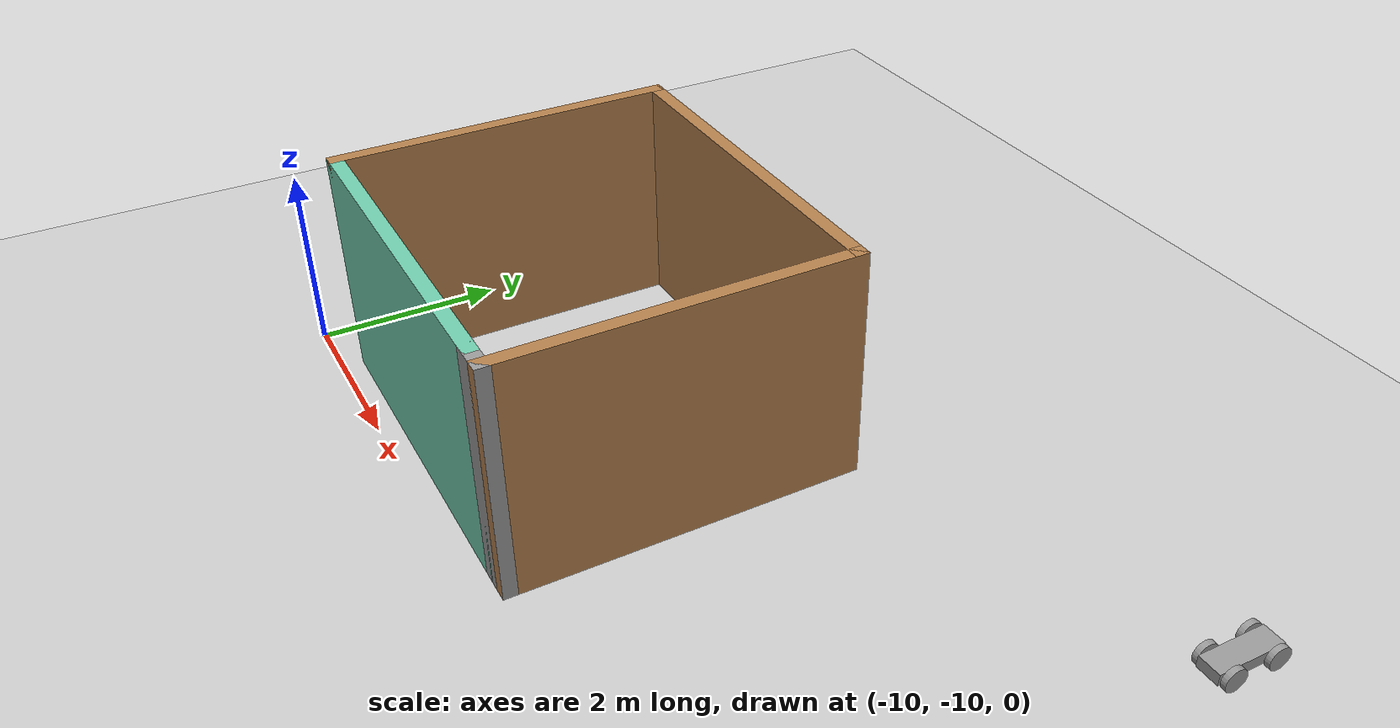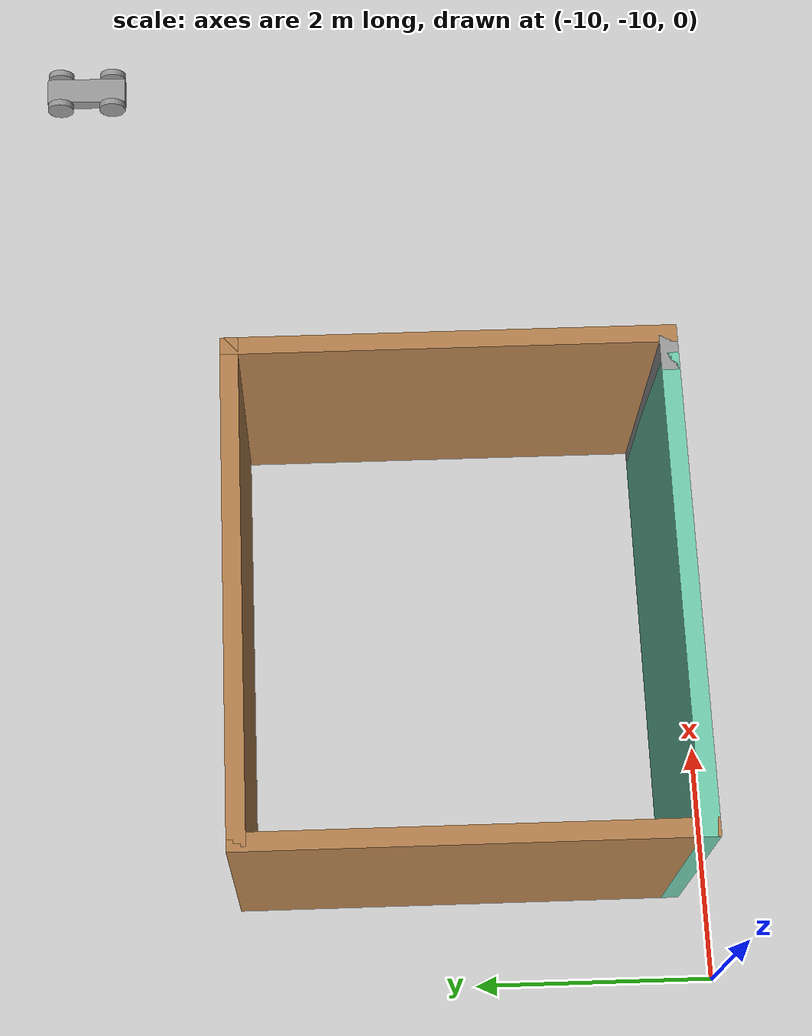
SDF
<sdf version="1.6">
 <world name="default">
  <model name="ground_plane">
   <static>1</static>
   <link name="link">
    <collision name="collision">
     <geometry><plane><normal>0 0 1</normal><size>100 100</size></plane></geometry>
     <surface>
      <contact><collide_bitmask>65535</collide_bitmask></contact>
      <friction><ode><mu>100</mu><mu2>50</mu2></ode></friction>
     </surface>
    </collision>
    <visual name="visual">
     <cast_shadows>0</cast_shadows>
     <geometry><plane><normal>0 0 1</normal><size>100 100</size></plane></geometry>
     <material>
      <script><uri>file://media/materials/scripts/gazebo.material</uri><name>Gazebo/Grey</name></script>
     </material>
    </visual>
   </link>
  </model>
  <model name="WoodBlue">
   <pose>-7.16867 -7.90028 0 0 -0 0</pose>
   <link name="Wall_0">
    <collision name="Wall_0_Collision">
     <geometry><box><size>4 0.15 2.5</size></box></geometry>
     <pose>0 0 1.25 0 -0 0</pose>
    </collision>
    <visual name="Wall_0_Visual">
     <pose>0 0 1.25 0 -0 0</pose>
     <geometry><box><size>4 0.15 2.5</size></box></geometry>
     <material>
      <script><uri>file://media/materials/scripts/gazebo.material</uri><name>Gazebo/Grey</name></script>
      <ambient>0.435294 0.796078 0.67451 1</ambient>
     </material>
     <meta><layer>0</layer></meta>
    </visual>
    <pose>-0.125 -1.8 0 0 -0 0</pose>
   </link>
   <link name="Wall_3">
    <collision name="Wall_3_Collision">
     <geometry><box><size>3.75 0.15 2.5</size></box></geometry>
     <pose>0 0 1.25 0 -0 0</pose>
    </collision>
    <visual name="Wall_3_Visual">
     <pose>0 0 1.25 0 -0 0</pose>
     <geometry><box><size>3.75 0.15 2.5</size></box></geometry>
     <material>
      <script><uri>file://media/materials/scripts/gazebo.material</uri><name>Gazebo/Wood</name></script>
      <ambient>1 1 1 1</ambient>
     </material>
     <meta><layer>0</layer></meta>
    </visual>
    <pose>-2.05 0 0 0 -0 1.5708</pose>
   </link>
   <link name="Wall_4">
    <collision name="Wall_4_Collision">
     <geometry><box><size>4.25 0.15 2.5</size></box></geometry>
     <pose>0 0 1.25 0 -0 0</pose>
    </collision>
    <visual name="Wall_4_Visual">
     <pose>0 0 1.25 0 -0 0</pose>
     <geometry><box><size>4.25 0.15 2.5</size></box></geometry>
     <material>
      <script><uri>file://media/materials/scripts/gazebo.material</uri><name>Gazebo/Wood</name></script>
      <ambient>1 1 1 1</ambient>
     </material>
     <meta><layer>0</layer></meta>
    </visual>
    <pose>0 1.8 0 0 -0 0</pose>
   </link>
   <link name="Wall_5">
    <collision name="Wall_5_Collision">
     <geometry><box><size>3.75 0.15 2.5</size></box></geometry>
     <pose>0 0 1.25 0 -0 0</pose>
    </collision>
    <visual name="Wall_5_Visual">
     <pose>0 0 1.25 0 -0 0</pose>
     <geometry><box><size>3.75 0.15 2.5</size></box></geometry>
     <material>
      <script><uri>file://media/materials/scripts/gazebo.material</uri><name>Gazebo/Wood</name></script>
      <ambient>1 1 1 1</ambient>
     </material>
     <meta><layer>0</layer></meta>
    </visual>
    <pose>2.05 0 0 0 0 -1.5708</pose>
   </link>
   <link name="Wall_6">
    <collision name="Wall_6_Collision">
     <geometry><box><size>0.4 0.15 2.5</size></box></geometry>
     <pose>0 0 1.25 0 -0 0</pose>
    </collision>
    <visual name="Wall_6_Visual">
     <pose>0 0 1.25 0 -0 0</pose>
     <geometry><box><size>0.4 0.15 2.5</size></box></geometry>
     <material>
      <script><uri>file://media/materials/scripts/gazebo.material</uri><name>Gazebo/Grey</name></script>
      <ambient>1 1 1 1</ambient>
     </material>
     <meta><layer>0</layer></meta>
    </visual>
    <pose>1.925 -1.8 0 0 0 -3.14159</pose>
   </link>
   <static>1</static>
  </model>
  <model name="Car">
   <link name="link_0">
    <pose>-0.006 0 0 0 -0 0</pose>
    <inertial>
     <mass>1</mass>
     <inertia>
      <ixx>0.166667</ixx>
      <ixy>0</ixy>
      <ixz>0</ixz>
      <iyy>0.166667</iyy>
      <iyz>0</iyz>
      <izz>0.166667</izz>
     </inertia>
    </inertial>
    <visual name="visual">
     <geometry><box><size>0.25 0.75 0.125</size></box></geometry>
     <material>
      <lighting>1</lighting>
      <script><uri>file://media/materials/scripts/gazebo.material</uri><name>Gazebo/Grey</name></script>
      <shader type="pixel"><normal_map>__default__</normal_map></shader>
      <ambient>0.3 0.3 0.3 1</ambient>
      <diffuse>0.7 0.7 0.7 1</diffuse>
      <specular>0.01 0.01 0.01 1</specular>
      <emissive>0 0 0 1</emissive>
     </material>
    </visual>
    <collision name="collision">
     <geometry><box><size>0.25 0.75 0.125</size></box></geometry>
     <surface>
      <friction>
       <ode><mu>1</mu><mu2>1</mu2><fdir1>0 0 0</fdir1><slip1>0</slip1><slip2>0</slip2></ode>
       <torsional>
        <coefficient>1</coefficient>
        <patch_radius>0</patch_radius>
        <surface_radius>0</surface_radius>
        <use_patch_radius>1</use_patch_radius>
        <ode><slip>0</slip></ode>
       </torsional>
      </friction>
      <bounce><restitution_coefficient>0</restitution_coefficient><threshold>1e+06</threshold></bounce>
      <contact>
       <collide_without_contact>0</collide_without_contact>
       <collide_without_contact_bitmask>1</collide_without_contact_bitmask>
       <collide_bitmask>1</collide_bitmask>
       <ode>
        <soft_cfm>0</soft_cfm>
        <soft_erp>0.2</soft_erp>
        <kp>1e+13</kp>
        <kd>1</kd>
        <max_vel>0.01</max_vel>
        <min_depth>0</min_depth>
       </ode>
       <bullet>
        <split_impulse>1</split_impulse>
        <split_impulse_penetration_threshold>-0.01</split_impulse_penetration_threshold>
        <soft_cfm>0</soft_cfm>
        <soft_erp>0.2</soft_erp>
        <kp>1e+13</kp>
        <kd>1</kd>
       </bullet>
      </contact>
     </surface>
    </collision>
   </link>
   <link name="link_1">
    <pose>0.164024 -0.249997 0 0 -0 0</pose>
    <inertial>
     <mass>1</mass>
     <inertia><ixx>0.145833</ixx><ixy>0</ixy><ixz>0</ixz><iyy>0.145833</iyy><iyz>0</iyz><izz>0.125</izz></inertia>
    </inertial>
    <visual name="visual">
     <pose>0 0 0 1.5707 0 1.5707</pose>
     <geometry><cylinder><radius>0.125</radius><length>0.06</length></cylinder></geometry>
     <material>
      <lighting>1</lighting>
      <script><uri>file://media/materials/scripts/gazebo.material</uri><name>Gazebo/Grey</name></script>
      <shader type="pixel"><normal_map>__default__</normal_map></shader>
      <ambient>0.3 0.3 0.3 1</ambient>
      <diffuse>0.7 0.7 0.7 1</diffuse>
      <specular>0.01 0.01 0.01 1</specular>
      <emissive>0 0 0 1</emissive>
     </material>
    </visual>
    <collision name="collision">
     <pose>0 0 0 1.5707 0 1.5707</pose>
     <geometry><cylinder><radius>0.125</radius><length>0.06</length></cylinder></geometry>
     <surface>
      <friction>
       <ode><mu>1</mu><mu2>1</mu2><fdir1>0 0 0</fdir1><slip1>0</slip1><slip2>0</slip2></ode>
       <torsional>
        <coefficient>1</coefficient>
        <patch_radius>0</patch_radius>
        <surface_radius>0</surface_radius>
        <use_patch_radius>1</use_patch_radius>
        <ode><slip>0</slip></ode>
       </torsional>
      </friction>
      <bounce><restitution_coefficient>0</restitution_coefficient><threshold>1e+06</threshold></bounce>
      <contact>
       <collide_without_contact>0</collide_without_contact>
       <collide_without_contact_bitmask>1</collide_without_contact_bitmask>
       <collide_bitmask>1</collide_bitmask>
       <ode>
        <soft_cfm>0</soft_cfm>
        <soft_erp>0.2</soft_erp>
        <kp>1e+13</kp>
        <kd>1</kd>
        <max_vel>0.01</max_vel>
        <min_depth>0</min_depth>
       </ode>
       <bullet>
        <split_impulse>1</split_impulse>
        <split_impulse_penetration_threshold>-0.01</split_impulse_penetration_threshold>
        <soft_cfm>0</soft_cfm>
        <soft_erp>0.2</soft_erp>
        <kp>1e+13</kp>
        <kd>1</kd>
       </bullet>
      </contact>
     </surface>
    </collision>
   </link>
   <link name="link_1_clone">
    <pose>0.164024 0.249997 0 0 -0 0</pose>
    <inertial>
     <mass>1</mass>
     <inertia><ixx>0.145833</ixx><ixy>0</ixy><ixz>0</ixz><iyy>0.145833</iyy><iyz>0</iyz><izz>0.125</izz></inertia>
    </inertial>
    <visual name="visual">
     <pose>0 0 0 1.5707 0 1.5707</pose>
     <geometry><cylinder><radius>0.125</radius><length>0.06</length></cylinder></geometry>
     <material>
      <lighting>1</lighting>
      <script><uri>file://media/materials/scripts/gazebo.material</uri><name>Gazebo/Grey</name></script>
      <shader type="pixel"><normal_map>__default__</normal_map></shader>
      <ambient>0.3 0.3 0.3 1</ambient>
      <diffuse>0.7 0.7 0.7 1</diffuse>
      <specular>0.01 0.01 0.01 1</specular>
      <emissive>0 0 0 1</emissive>
     </material>
    </visual>
    <collision name="collision">
     <pose>0 0 0 1.5707 0 1.5707</pose>
     <geometry><cylinder><radius>0.125</radius><length>0.06</length></cylinder></geometry>
     <surface>
      <friction>
       <ode><mu>1</mu><mu2>1</mu2><fdir1>0 0 0</fdir1><slip1>0</slip1><slip2>0</slip2></ode>
       <torsional>
        <coefficient>1</coefficient>
        <patch_radius>0</patch_radius>
        <surface_radius>0</surface_radius>
        <use_patch_radius>1</use_patch_radius>
        <ode><slip>0</slip></ode>
       </torsional>
      </friction>
      <bounce><restitution_coefficient>0</restitution_coefficient><threshold>1e+06</threshold></bounce>
      <contact>
       <collide_without_contact>0</collide_without_contact>
       <collide_without_contact_bitmask>1</collide_without_contact_bitmask>
       <collide_bitmask>1</collide_bitmask>
       <ode>
        <soft_cfm>0</soft_cfm>
        <soft_erp>0.2</soft_erp>
        <kp>1e+13</kp>
        <kd>1</kd>
        <max_vel>0.01</max_vel>
        <min_depth>0</min_depth>
       </ode>
       <bullet>
        <split_impulse>1</split_impulse>
        <split_impulse_penetration_threshold>-0.01</split_impulse_penetration_threshold>
        <soft_cfm>0</soft_cfm>
        <soft_erp>0.2</soft_erp>
        <kp>1e+13</kp>
        <kd>1</kd>
       </bullet>
      </contact>
     </surface>
    </collision>
   </link>
   <link name="link_1_clone_0">
    <pose>-0.161024 0.249997 0 0 -0 0</pose>
    <inertial>
     <mass>1</mass>
     <inertia><ixx>0.145833</ixx><ixy>0</ixy><ixz>0</ixz><iyy>0.145833</iyy><iyz>0</iyz><izz>0.125</izz></inertia>
    </inertial>
    <visual name="visual">
     <pose>0 0 0 1.5707 0 1.5707</pose>
     <geometry><cylinder><radius>0.125</radius><length>0.06</length></cylinder></geometry>
     <material>
      <lighting>1</lighting>
      <script><uri>file://media/materials/scripts/gazebo.material</uri><name>Gazebo/Grey</name></script>
      <shader type="pixel"><normal_map>__default__</normal_map></shader>
      <ambient>0.3 0.3 0.3 1</ambient>
      <diffuse>0.7 0.7 0.7 1</diffuse>
      <specular>0.01 0.01 0.01 1</specular>
      <emissive>0 0 0 1</emissive>
     </material>
    </visual>
    <collision name="collision">
     <pose>0 0 0 1.5707 0 1.5707</pose>
     <geometry><cylinder><radius>0.125</radius><length>0.06</length></cylinder></geometry>
     <surface>
      <friction>
       <ode><mu>1</mu><mu2>1</mu2><fdir1>0 0 0</fdir1><slip1>0</slip1><slip2>0</slip2></ode>
       <torsional>
        <coefficient>1</coefficient>
        <patch_radius>0</patch_radius>
        <surface_radius>0</surface_radius>
        <use_patch_radius>1</use_patch_radius>
        <ode><slip>0</slip></ode>
       </torsional>
      </friction>
      <bounce><restitution_coefficient>0</restitution_coefficient><threshold>1e+06</threshold></bounce>
      <contact>
       <collide_without_contact>0</collide_without_contact>
       <collide_without_contact_bitmask>1</collide_without_contact_bitmask>
       <collide_bitmask>1</collide_bitmask>
       <ode>
        <soft_cfm>0</soft_cfm>
        <soft_erp>0.2</soft_erp>
        <kp>1e+13</kp>
        <kd>1</kd>
        <max_vel>0.01</max_vel>
        <min_depth>0</min_depth>
       </ode>
       <bullet>
        <split_impulse>1</split_impulse>
        <split_impulse_penetration_threshold>-0.01</split_impulse_penetration_threshold>
        <soft_cfm>0</soft_cfm>
        <soft_erp>0.2</soft_erp>
        <kp>1e+13</kp>
        <kd>1</kd>
       </bullet>
      </contact>
     </surface>
    </collision>
   </link>
   <link name="link_1_clone_1">
    <pose>-0.161024 -0.249997 0 0 -0 0</pose>
    <inertial>
     <mass>1</mass>
     <inertia><ixx>0.145833</ixx><ixy>0</ixy><ixz>0</ixz><iyy>0.145833</iyy><iyz>0</iyz><izz>0.125</izz></inertia>
    </inertial>
    <visual name="visual">
     <pose>0 0 0 1.5707 0 1.5707</pose>
     <geometry><cylinder><radius>0.125</radius><length>0.06</length></cylinder></geometry>
     <material>
      <lighting>1</lighting>
      <script><uri>file://media/materials/scripts/gazebo.material</uri><name>Gazebo/Grey</name></script>
      <shader type="pixel"><normal_map>__default__</normal_map></shader>
      <ambient>0.3 0.3 0.3 1</ambient>
      <diffuse>0.7 0.7 0.7 1</diffuse>
      <specular>0.01 0.01 0.01 1</specular>
      <emissive>0 0 0 1</emissive>
     </material>
    </visual>
    <collision name="collision">
     <pose>0 0 0 1.5707 0 1.5707</pose>
     <geometry><cylinder><radius>0.125</radius><length>0.06</length></cylinder></geometry>
     <surface>
      <friction>
       <ode><mu>1</mu><mu2>1</mu2><fdir1>0 0 0</fdir1><slip1>0</slip1><slip2>0</slip2></ode>
       <torsional>
        <coefficient>1</coefficient>
        <patch_radius>0</patch_radius>
        <surface_radius>0</surface_radius>
        <use_patch_radius>1</use_patch_radius>
        <ode><slip>0</slip></ode>
       </torsional>
      </friction>
      <bounce><restitution_coefficient>0</restitution_coefficient><threshold>1e+06</threshold></bounce>
      <contact>
       <collide_without_contact>0</collide_without_contact>
       <collide_without_contact_bitmask>1</collide_without_contact_bitmask>
       <collide_bitmask>1</collide_bitmask>
       <ode>
        <soft_cfm>0</soft_cfm>
        <soft_erp>0.2</soft_erp>
        <kp>1e+13</kp>
        <kd>1</kd>
        <max_vel>0.01</max_vel>
        <min_depth>0</min_depth>
       </ode>
       <bullet>
        <split_impulse>1</split_impulse>
        <split_impulse_penetration_threshold>-0.01</split_impulse_penetration_threshold>
        <soft_cfm>0</soft_cfm>
        <soft_erp>0.2</soft_erp>
        <kp>1e+13</kp>
        <kd>1</kd>
       </bullet>
      </contact>
     </surface>
    </collision>
   </link>
   <joint name="link_0_JOINT_1" type="revolute">
    <parent>link_0</parent>
    <child>link_1</child>
    <axis>
     <xyz>1 0 0</xyz>
     <use_parent_model_frame>0</use_parent_model_frame>
     <limit>
      <lower>-1.79769e+308</lower>
      <upper>1.79769e+308</upper>
      <effort>-1</effort>
      <velocity>-1</velocity>
     </limit>
     <dynamics>
      <spring_reference>0</spring_reference>
      <spring_stiffness>0</spring_stiffness>
      <damping>0</damping>
     </dynamics>
    </axis>
    <physics>
     <ode><limit><cfm>0</cfm><erp>0.2</erp></limit><suspension><cfm>0</cfm><erp>0.2</erp></suspension></ode>
    </physics>
   </joint>
   <joint name="link_0_JOINT_2" type="revolute">
    <parent>link_0</parent>
    <child>link_1_clone</child>
    <axis>
     <xyz>1 0 0</xyz>
     <use_parent_model_frame>0</use_parent_model_frame>
     <limit>
      <lower>-1.79769e+308</lower>
      <upper>1.79769e+308</upper>
      <effort>-1</effort>
      <velocity>-1</velocity>
     </limit>
     <dynamics>
      <spring_reference>0</spring_reference>
      <spring_stiffness>0</spring_stiffness>
      <damping>0</damping>
     </dynamics>
    </axis>
    <physics>
     <ode><limit><cfm>0</cfm><erp>0.2</erp></limit><suspension><cfm>0</cfm><erp>0.2</erp></suspension></ode>
    </physics>
   </joint>
   <joint name="link_0_JOINT_3" type="revolute">
    <parent>link_0</parent>
    <child>link_1_clone_0</child>
    <axis>
     <xyz>-1 0 0</xyz>
     <use_parent_model_frame>0</use_parent_model_frame>
     <limit>
      <lower>-1.79769e+308</lower>
      <upper>1.79769e+308</upper>
      <effort>-1</effort>
      <velocity>-1</velocity>
     </limit>
     <dynamics>
      <spring_reference>0</spring_reference>
      <spring_stiffness>0</spring_stiffness>
      <damping>0</damping>
     </dynamics>
    </axis>
    <physics>
     <ode><limit><cfm>0</cfm><erp>0.2</erp></limit><suspension><cfm>0</cfm><erp>0.2</erp></suspension></ode>
    </physics>
   </joint>
   <joint name="link_0_JOINT_4" type="revolute">
    <parent>link_0</parent>
    <child>link_1_clone_1</child>
    <axis>
     <xyz>-1 0 0</xyz>
     <use_parent_model_frame>0</use_parent_model_frame>
     <limit>
      <lower>-1.79769e+308</lower>
      <upper>1.79769e+308</upper>
      <effort>-1</effort>
      <velocity>-1</velocity>
     </limit>
     <dynamics>
      <spring_reference>0</spring_reference>
      <spring_stiffness>0</spring_stiffness>
      <damping>0</damping>
     </dynamics>
    </axis>
    <physics>
     <ode><limit><cfm>0</cfm><erp>0.2</erp></limit><suspension><cfm>0</cfm><erp>0.2</erp></suspension></ode>
    </physics>
   </joint>
   <static>0</static>
   <pose>-1.30827 -4.64591 0.125003 0 0 -0.009178</pose>
  </model>
 </world>
</sdf>
